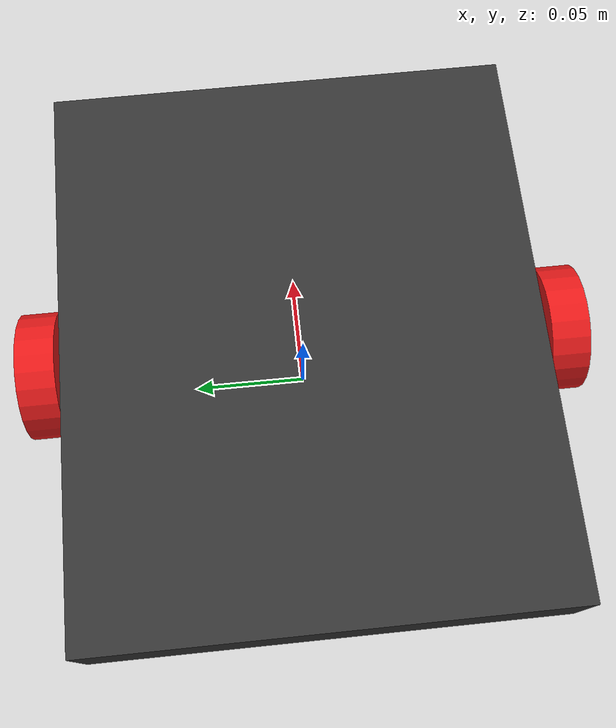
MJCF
<mujoco model="turtlebot3_waffle_pi">
  <compiler angle="degree" coordinate="local"/>
  <option gravity="0 0 -9.81" timestep="0.005" iterations="50" tolerance="1e-10"/>

  <worldbody>
    <light pos="0 0 3" dir="0 0 -1"/>
    <geom name="floor" type="plane" size="5 5 0.1" rgba="0.8 0.8 0.8 1"/>

    <body name="base_link" pos="0 0 0.045">
      <freejoint name="root"/>
      <geom name="chassis" type="box" size="0.12 0.10 0.02" mass="1.5" rgba="0.2 0.2 0.2 1" contype="0" conaffinity="0"/>

      <!-- Dedicated site for body axis visualization -->
      <site name="body_frame_site" pos="0 0 0" size="0.01"/>

      <geom name="caster_front" type="sphere" size="0.012" pos="0.09 0 -0.02" mass="0.02" friction="0.005"/>
      <geom name="caster_rear" type="sphere" size="0.012" pos="-0.09 0 -0.02" mass="0.02" friction="0.005"/>

      <body name="left_wheel" pos="0 0.11 -0.005">
        <joint name="left_wheel_joint" type="hinge" axis="0 1 0" damping="0.1" armature="0.01"/>
        <geom type="cylinder" size="0.027 0.008" euler="90 0 0" mass="0.1" friction="1.0 0.005 0.0001" solref="0.02 1" rgba="0.9 0.1 0.1 1"/>
      </body>

      <body name="right_wheel" pos="0 -0.11 -0.005">
        <joint name="right_wheel_joint" type="hinge" axis="0 1 0" damping="0.1" armature="0.01"/>
        <geom type="cylinder" size="0.027 0.008" euler="90 0 0" mass="0.1" friction="1.0 0.005 0.0001" solref="0.02 1" rgba="0.9 0.1 0.1 1"/>
      </body>
    </body>
  </worldbody>

  <actuator>
    <velocity name="left_motor" joint="left_wheel_joint" kv="3" ctrlrange="-50 50"/>
    <velocity name="right_motor" joint="right_wheel_joint" kv="3" ctrlrange="-50 50"/>
  </actuator>
</mujoco>
